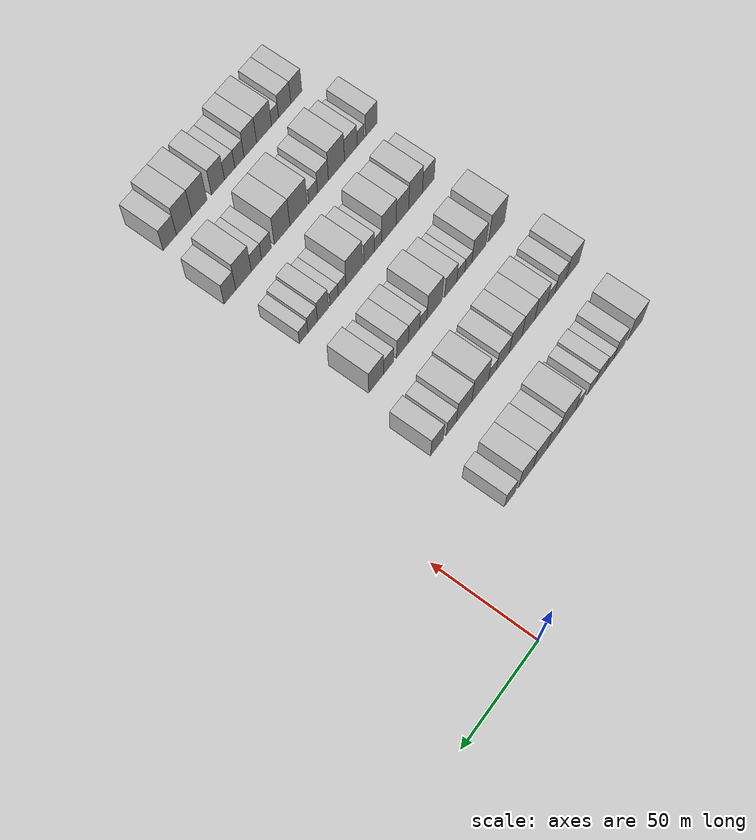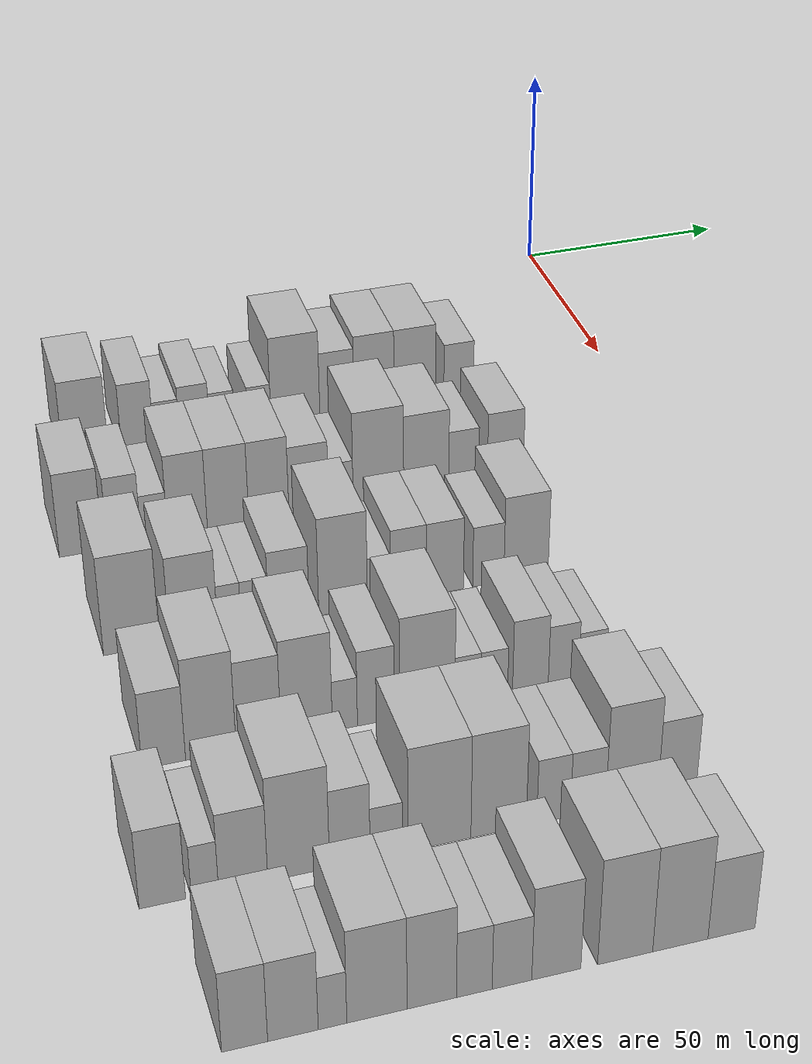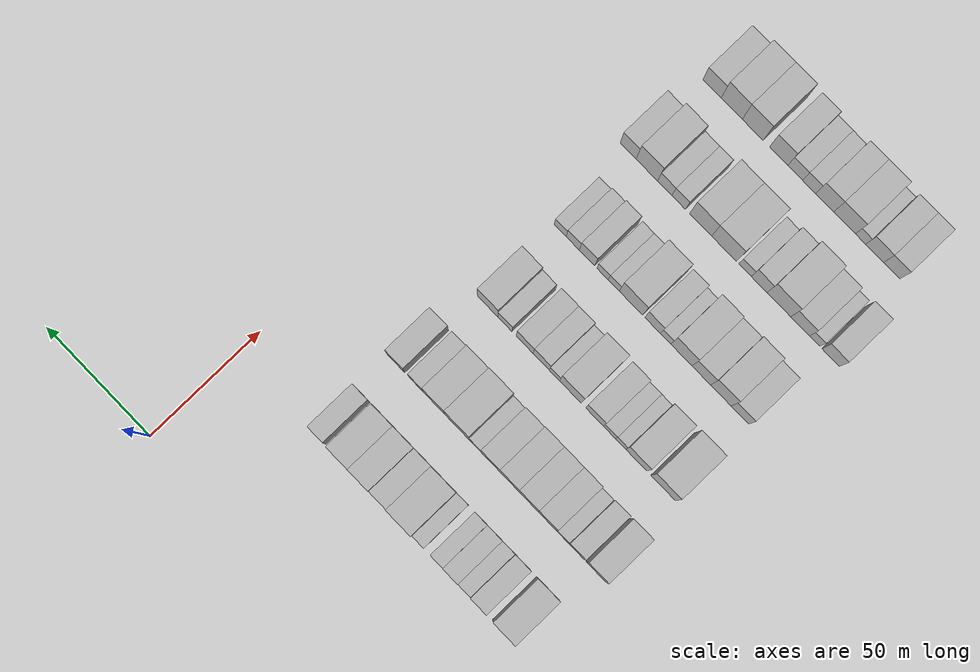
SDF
<sdf version="1.6">
 <world name="default">
  <model name="building_44">
   <static>1</static>
   <pose>50.0000 -126.5563 0 0.000000 0.000000 0.000000</pose>
   <link name="link">
    <pose>0 0 10.50 0 0 0</pose>
    <collision name="collision"><geometry><box><size>20.0000 10.2554 21.0000</size></box></geometry></collision>
    <visual name="visual">
     <cast_shadows>0</cast_shadows>
     <geometry><box><size>20.0000 10.2554 21.0000</size></box></geometry>
     <material>
      <script>
       <uri>model://HANNAS_wall/materials/scripts</uri>
       <uri>model://HANNAS_wall/materials/textures</uri>
       <name>vrc/HANNAS_wall</name>
      </script>
     </material>
    </visual>
   </link>
  </model>
  <model name="building_45">
   <static>1</static>
   <pose>50.0000 -114.7270 0 0.000000 0.000000 0.000000</pose>
   <link name="link">
    <pose>0 0 9.00 0 0 0</pose>
    <collision name="collision"><geometry><box><size>20.0000 7.4034 18.0000</size></box></geometry></collision>
    <visual name="visual">
     <cast_shadows>0</cast_shadows>
     <geometry><box><size>20.0000 7.4034 18.0000</size></box></geometry>
     <material>
      <script>
       <uri>model://HANNAS_wall/materials/scripts</uri>
       <uri>model://HANNAS_wall/materials/textures</uri>
       <name>vrc/HANNAS_wall</name>
      </script>
     </material>
    </visual>
   </link>
  </model>
  <model name="building_46">
   <static>1</static>
   <pose>50.0000 -108.0802 0 0.000000 0.000000 0.000000</pose>
   <link name="link">
    <pose>0 0 6.00 0 0 0</pose>
    <collision name="collision"><geometry><box><size>20.0000 5.8900 12.0000</size></box></geometry></collision>
    <visual name="visual">
     <cast_shadows>0</cast_shadows>
     <geometry><box><size>20.0000 5.8900 12.0000</size></box></geometry>
     <material>
      <script>
       <uri>model://HANNAS_wall/materials/scripts</uri>
       <uri>model://HANNAS_wall/materials/textures</uri>
       <name>vrc/HANNAS_wall</name>
      </script>
     </material>
    </visual>
   </link>
  </model>
  <model name="building_47">
   <static>1</static>
   <pose>50.0000 -101.6325 0 0.000000 0.000000 0.000000</pose>
   <link name="link">
    <pose>0 0 7.50 0 0 0</pose>
    <collision name="collision"><geometry><box><size>20.0000 7.0054 15.0000</size></box></geometry></collision>
    <visual name="visual">
     <cast_shadows>0</cast_shadows>
     <geometry><box><size>20.0000 7.0054 15.0000</size></box></geometry>
     <material>
      <script>
       <uri>model://HANNAS_wall/materials/scripts</uri>
       <uri>model://HANNAS_wall/materials/textures</uri>
       <name>vrc/HANNAS_wall</name>
      </script>
     </material>
    </visual>
   </link>
  </model>
  <model name="building_48">
   <static>1</static>
   <pose>50.0000 -95.1875 0 0.000000 0.000000 0.000000</pose>
   <link name="link">
    <pose>0 0 6.00 0 0 0</pose>
    <collision name="collision"><geometry><box><size>20.0000 5.8846 12.0000</size></box></geometry></collision>
    <visual name="visual">
     <cast_shadows>0</cast_shadows>
     <geometry><box><size>20.0000 5.8846 12.0000</size></box></geometry>
     <material>
      <script>
       <uri>model://HANNAS_wall/materials/scripts</uri>
       <uri>model://HANNAS_wall/materials/textures</uri>
       <name>vrc/HANNAS_wall</name>
      </script>
     </material>
    </visual>
   </link>
  </model>
  <model name="building_49">
   <static>1</static>
   <pose>50.0000 -86.5056 0 0.000000 0.000000 0.000000</pose>
   <link name="link">
    <pose>0 0 6.00 0 0 0</pose>
    <collision name="collision"><geometry><box><size>20.0000 5.4793 12.0000</size></box></geometry></collision>
    <visual name="visual">
     <cast_shadows>0</cast_shadows>
     <geometry><box><size>20.0000 5.4793 12.0000</size></box></geometry>
     <material>
      <script>
       <uri>model://HANNAS_wall/materials/scripts</uri>
       <uri>model://HANNAS_wall/materials/textures</uri>
       <name>vrc/HANNAS_wall</name>
      </script>
     </material>
    </visual>
   </link>
  </model>
  <model name="building_50">
   <static>1</static>
   <pose>50.0000 -77.9951 0 0.000000 0.000000 0.000000</pose>
   <link name="link">
    <pose>0 0 12.00 0 0 0</pose>
    <collision name="collision"><geometry><box><size>20.0000 11.5418 24.0000</size></box></geometry></collision>
    <visual name="visual">
     <cast_shadows>0</cast_shadows>
     <geometry><box><size>20.0000 11.5418 24.0000</size></box></geometry>
     <material>
      <script>
       <uri>model://HANNAS_wall/materials/scripts</uri>
       <uri>model://HANNAS_wall/materials/textures</uri>
       <name>vrc/HANNAS_wall</name>
      </script>
     </material>
    </visual>
   </link>
  </model>
  <model name="building_51">
   <static>1</static>
   <pose>50.0000 -68.1333 0 0.000000 0.000000 0.000000</pose>
   <link name="link">
    <pose>0 0 9.00 0 0 0</pose>
    <collision name="collision"><geometry><box><size>20.0000 8.1817 18.0000</size></box></geometry></collision>
    <visual name="visual">
     <cast_shadows>0</cast_shadows>
     <geometry><box><size>20.0000 8.1817 18.0000</size></box></geometry>
     <material>
      <script>
       <uri>model://HANNAS_wall/materials/scripts</uri>
       <uri>model://HANNAS_wall/materials/textures</uri>
       <name>vrc/HANNAS_wall</name>
      </script>
     </material>
    </visual>
   </link>
  </model>
  <model name="building_52">
   <static>1</static>
   <pose>50.0000 -59.2234 0 0.000000 0.000000 0.000000</pose>
   <link name="link">
    <pose>0 0 10.50 0 0 0</pose>
    <collision name="collision"><geometry><box><size>20.0000 9.6382 21.0000</size></box></geometry></collision>
    <visual name="visual">
     <cast_shadows>0</cast_shadows>
     <geometry><box><size>20.0000 9.6382 21.0000</size></box></geometry>
     <material>
      <script>
       <uri>model://HANNAS_wall/materials/scripts</uri>
       <uri>model://HANNAS_wall/materials/textures</uri>
       <name>vrc/HANNAS_wall</name>
      </script>
     </material>
    </visual>
   </link>
  </model>
  <model name="building_53">
   <static>1</static>
   <pose>50.0000 -49.3553 0 0.000000 0.000000 0.000000</pose>
   <link name="link">
    <pose>0 0 10.50 0 0 0</pose>
    <collision name="collision"><geometry><box><size>20.0000 10.0978 21.0000</size></box></geometry></collision>
    <visual name="visual">
     <cast_shadows>0</cast_shadows>
     <geometry><box><size>20.0000 10.0978 21.0000</size></box></geometry>
     <material>
      <script>
       <uri>model://HANNAS_wall/materials/scripts</uri>
       <uri>model://HANNAS_wall/materials/textures</uri>
       <name>vrc/HANNAS_wall</name>
      </script>
     </material>
    </visual>
   </link>
  </model>
  <model name="building_54">
   <static>1</static>
   <pose>50.0000 -38.6630 0 0.000000 0.000000 0.000000</pose>
   <link name="link">
    <pose>0 0 7.50 0 0 0</pose>
    <collision name="collision"><geometry><box><size>20.0000 7.2869 15.0000</size></box></geometry></collision>
    <visual name="visual">
     <cast_shadows>0</cast_shadows>
     <geometry><box><size>20.0000 7.2869 15.0000</size></box></geometry>
     <material>
      <script>
       <uri>model://HANNAS_wall/materials/scripts</uri>
       <uri>model://HANNAS_wall/materials/textures</uri>
       <name>vrc/HANNAS_wall</name>
      </script>
     </material>
    </visual>
   </link>
  </model>
  <model name="building_170">
   <static>1</static>
   <pose>85.0000 -133.5692 0 0.000000 0.000000 0.000000</pose>
   <link name="link">
    <pose>0 0 10.50 0 0 0</pose>
    <collision name="collision"><geometry><box><size>20.0000 9.2683 21.0000</size></box></geometry></collision>
    <visual name="visual">
     <cast_shadows>0</cast_shadows>
     <geometry><box><size>20.0000 9.2683 21.0000</size></box></geometry>
     <material>
      <script>
       <uri>model://HANNAS_wall/materials/scripts</uri>
       <uri>model://HANNAS_wall/materials/textures</uri>
       <name>vrc/HANNAS_wall</name>
      </script>
     </material>
    </visual>
   </link>
  </model>
  <model name="building_171">
   <static>1</static>
   <pose>85.0000 -124.3135 0 0.000000 0.000000 0.000000</pose>
   <link name="link">
    <pose>0 0 9.00 0 0 0</pose>
    <collision name="collision"><geometry><box><size>20.0000 7.2431 18.0000</size></box></geometry></collision>
    <visual name="visual">
     <cast_shadows>0</cast_shadows>
     <geometry><box><size>20.0000 7.2431 18.0000</size></box></geometry>
     <material>
      <script>
       <uri>model://HANNAS_wall/materials/scripts</uri>
       <uri>model://HANNAS_wall/materials/textures</uri>
       <name>vrc/HANNAS_wall</name>
      </script>
     </material>
    </visual>
   </link>
  </model>
  <model name="building_172">
   <static>1</static>
   <pose>85.0000 -117.8173 0 0.000000 0.000000 0.000000</pose>
   <link name="link">
    <pose>0 0 6.00 0 0 0</pose>
    <collision name="collision"><geometry><box><size>20.0000 5.7494 12.0000</size></box></geometry></collision>
    <visual name="visual">
     <cast_shadows>0</cast_shadows>
     <geometry><box><size>20.0000 5.7494 12.0000</size></box></geometry>
     <material>
      <script>
       <uri>model://HANNAS_wall/materials/scripts</uri>
       <uri>model://HANNAS_wall/materials/textures</uri>
       <name>vrc/HANNAS_wall</name>
      </script>
     </material>
    </visual>
   </link>
  </model>
  <model name="building_173">
   <static>1</static>
   <pose>85.0000 -110.6267 0 0.000000 0.000000 0.000000</pose>
   <link name="link">
    <pose>0 0 10.50 0 0 0</pose>
    <collision name="collision"><geometry><box><size>20.0000 8.6318 21.0000</size></box></geometry></collision>
    <visual name="visual">
     <cast_shadows>0</cast_shadows>
     <geometry><box><size>20.0000 8.6318 21.0000</size></box></geometry>
     <material>
      <script>
       <uri>model://HANNAS_wall/materials/scripts</uri>
       <uri>model://HANNAS_wall/materials/textures</uri>
       <name>vrc/HANNAS_wall</name>
      </script>
     </material>
    </visual>
   </link>
  </model>
  <model name="building_174">
   <static>1</static>
   <pose>85.0000 -101.7493 0 0.000000 0.000000 0.000000</pose>
   <link name="link">
    <pose>0 0 10.50 0 0 0</pose>
    <collision name="collision"><geometry><box><size>20.0000 9.1229 21.0000</size></box></geometry></collision>
    <visual name="visual">
     <cast_shadows>0</cast_shadows>
     <geometry><box><size>20.0000 9.1229 21.0000</size></box></geometry>
     <material>
      <script>
       <uri>model://HANNAS_wall/materials/scripts</uri>
       <uri>model://HANNAS_wall/materials/textures</uri>
       <name>vrc/HANNAS_wall</name>
      </script>
     </material>
    </visual>
   </link>
  </model>
  <model name="building_175">
   <static>1</static>
   <pose>85.0000 -92.7493 0 0.000000 0.000000 0.000000</pose>
   <link name="link">
    <pose>0 0 10.50 0 0 0</pose>
    <collision name="collision"><geometry><box><size>20.0000 8.8771 21.0000</size></box></geometry></collision>
    <visual name="visual">
     <cast_shadows>0</cast_shadows>
     <geometry><box><size>20.0000 8.8771 21.0000</size></box></geometry>
     <material>
      <script>
       <uri>model://HANNAS_wall/materials/scripts</uri>
       <uri>model://HANNAS_wall/materials/textures</uri>
       <name>vrc/HANNAS_wall</name>
      </script>
     </material>
    </visual>
   </link>
  </model>
  <model name="building_176">
   <static>1</static>
   <pose>85.0000 -83.8791 0 0.000000 0.000000 0.000000</pose>
   <link name="link">
    <pose>0 0 9.00 0 0 0</pose>
    <collision name="collision"><geometry><box><size>20.0000 8.8634 18.0000</size></box></geometry></collision>
    <visual name="visual">
     <cast_shadows>0</cast_shadows>
     <geometry><box><size>20.0000 8.8634 18.0000</size></box></geometry>
     <material>
      <script>
       <uri>model://HANNAS_wall/materials/scripts</uri>
       <uri>model://HANNAS_wall/materials/textures</uri>
       <name>vrc/HANNAS_wall</name>
      </script>
     </material>
    </visual>
   </link>
  </model>
  <model name="building_177">
   <static>1</static>
   <pose>85.0000 -76.6823 0 0.000000 0.000000 0.000000</pose>
   <link name="link">
    <pose>0 0 6.00 0 0 0</pose>
    <collision name="collision"><geometry><box><size>20.0000 5.5302 12.0000</size></box></geometry></collision>
    <visual name="visual">
     <cast_shadows>0</cast_shadows>
     <geometry><box><size>20.0000 5.5302 12.0000</size></box></geometry>
     <material>
      <script>
       <uri>model://HANNAS_wall/materials/scripts</uri>
       <uri>model://HANNAS_wall/materials/textures</uri>
       <name>vrc/HANNAS_wall</name>
      </script>
     </material>
    </visual>
   </link>
  </model>
  <model name="building_178">
   <static>1</static>
   <pose>85.0000 -68.1731 0 0.000000 0.000000 0.000000</pose>
   <link name="link">
    <pose>0 0 12.00 0 0 0</pose>
    <collision name="collision"><geometry><box><size>20.0000 11.4882 24.0000</size></box></geometry></collision>
    <visual name="visual">
     <cast_shadows>0</cast_shadows>
     <geometry><box><size>20.0000 11.4882 24.0000</size></box></geometry>
     <material>
      <script>
       <uri>model://HANNAS_wall/materials/scripts</uri>
       <uri>model://HANNAS_wall/materials/textures</uri>
       <name>vrc/HANNAS_wall</name>
      </script>
     </material>
    </visual>
   </link>
  </model>
  <model name="building_179">
   <static>1</static>
   <pose>85.0000 -57.2550 0 0.000000 0.000000 0.000000</pose>
   <link name="link">
    <pose>0 0 10.50 0 0 0</pose>
    <collision name="collision"><geometry><box><size>20.0000 10.3480 21.0000</size></box></geometry></collision>
    <visual name="visual">
     <cast_shadows>0</cast_shadows>
     <geometry><box><size>20.0000 10.3480 21.0000</size></box></geometry>
     <material>
      <script>
       <uri>model://HANNAS_wall/materials/scripts</uri>
       <uri>model://HANNAS_wall/materials/textures</uri>
       <name>vrc/HANNAS_wall</name>
      </script>
     </material>
    </visual>
   </link>
  </model>
  <model name="building_180">
   <static>1</static>
   <pose>85.0000 -48.6281 0 0.000000 0.000000 0.000000</pose>
   <link name="link">
    <pose>0 0 7.50 0 0 0</pose>
    <collision name="collision"><geometry><box><size>20.0000 6.9058 15.0000</size></box></geometry></collision>
    <visual name="visual">
     <cast_shadows>0</cast_shadows>
     <geometry><box><size>20.0000 6.9058 15.0000</size></box></geometry>
     <material>
      <script>
       <uri>model://HANNAS_wall/materials/scripts</uri>
       <uri>model://HANNAS_wall/materials/textures</uri>
       <name>vrc/HANNAS_wall</name>
      </script>
     </material>
    </visual>
   </link>
  </model>
  <model name="building_181">
   <static>1</static>
   <pose>85.0000 -38.9737 0 0.000000 0.000000 0.000000</pose>
   <link name="link">
    <pose>0 0 9.00 0 0 0</pose>
    <collision name="collision"><geometry><box><size>20.0000 8.4031 18.0000</size></box></geometry></collision>
    <visual name="visual">
     <cast_shadows>0</cast_shadows>
     <geometry><box><size>20.0000 8.4031 18.0000</size></box></geometry>
     <material>
      <script>
       <uri>model://HANNAS_wall/materials/scripts</uri>
       <uri>model://HANNAS_wall/materials/textures</uri>
       <name>vrc/HANNAS_wall</name>
      </script>
     </material>
    </visual>
   </link>
  </model>
  <model name="building_297">
   <static>1</static>
   <pose>120.0000 -129.3568 0 0.000000 0.000000 0.000000</pose>
   <link name="link">
    <pose>0 0 12.00 0 0 0</pose>
    <collision name="collision"><geometry><box><size>20.0000 11.3334 24.0000</size></box></geometry></collision>
    <visual name="visual">
     <cast_shadows>0</cast_shadows>
     <geometry><box><size>20.0000 11.3334 24.0000</size></box></geometry>
     <material>
      <script>
       <uri>model://HANNAS_wall/materials/scripts</uri>
       <uri>model://HANNAS_wall/materials/textures</uri>
       <name>vrc/HANNAS_wall</name>
      </script>
     </material>
    </visual>
   </link>
  </model>
  <model name="building_298">
   <static>1</static>
   <pose>120.0000 -116.7527 0 0.000000 0.000000 0.000000</pose>
   <link name="link">
    <pose>0 0 10.50 0 0 0</pose>
    <collision name="collision"><geometry><box><size>20.0000 9.8749 21.0000</size></box></geometry></collision>
    <visual name="visual">
     <cast_shadows>0</cast_shadows>
     <geometry><box><size>20.0000 9.8749 21.0000</size></box></geometry>
     <material>
      <script>
       <uri>model://HANNAS_wall/materials/scripts</uri>
       <uri>model://HANNAS_wall/materials/textures</uri>
       <name>vrc/HANNAS_wall</name>
      </script>
     </material>
    </visual>
   </link>
  </model>
  <model name="building_299">
   <static>1</static>
   <pose>120.0000 -109.3973 0 0.000000 0.000000 0.000000</pose>
   <link name="link">
    <pose>0 0 6.00 0 0 0</pose>
    <collision name="collision"><geometry><box><size>20.0000 4.8359 12.0000</size></box></geometry></collision>
    <visual name="visual">
     <cast_shadows>0</cast_shadows>
     <geometry><box><size>20.0000 4.8359 12.0000</size></box></geometry>
     <material>
      <script>
       <uri>model://HANNAS_wall/materials/scripts</uri>
       <uri>model://HANNAS_wall/materials/textures</uri>
       <name>vrc/HANNAS_wall</name>
      </script>
     </material>
    </visual>
   </link>
  </model>
  <model name="building_300">
   <static>1</static>
   <pose>120.0000 -104.1195 0 0.000000 0.000000 0.000000</pose>
   <link name="link">
    <pose>0 0 6.00 0 0 0</pose>
    <collision name="collision"><geometry><box><size>20.0000 5.7197 12.0000</size></box></geometry></collision>
    <visual name="visual">
     <cast_shadows>0</cast_shadows>
     <geometry><box><size>20.0000 5.7197 12.0000</size></box></geometry>
     <material>
      <script>
       <uri>model://HANNAS_wall/materials/scripts</uri>
       <uri>model://HANNAS_wall/materials/textures</uri>
       <name>vrc/HANNAS_wall</name>
      </script>
     </material>
    </visual>
   </link>
  </model>
  <model name="building_301">
   <static>1</static>
   <pose>120.0000 -97.0399 0 0.000000 0.000000 0.000000</pose>
   <link name="link">
    <pose>0 0 9.00 0 0 0</pose>
    <collision name="collision"><geometry><box><size>20.0000 8.4394 18.0000</size></box></geometry></collision>
    <visual name="visual">
     <cast_shadows>0</cast_shadows>
     <geometry><box><size>20.0000 8.4394 18.0000</size></box></geometry>
     <material>
      <script>
       <uri>model://HANNAS_wall/materials/scripts</uri>
       <uri>model://HANNAS_wall/materials/textures</uri>
       <name>vrc/HANNAS_wall</name>
      </script>
     </material>
    </visual>
   </link>
  </model>
  <model name="building_302">
   <static>1</static>
   <pose>120.0000 -85.6773 0 0.000000 0.000000 0.000000</pose>
   <link name="link">
    <pose>0 0 12.00 0 0 0</pose>
    <collision name="collision"><geometry><box><size>20.0000 10.2858 24.0000</size></box></geometry></collision>
    <visual name="visual">
     <cast_shadows>0</cast_shadows>
     <geometry><box><size>20.0000 10.2858 24.0000</size></box></geometry>
     <material>
      <script>
       <uri>model://HANNAS_wall/materials/scripts</uri>
       <uri>model://HANNAS_wall/materials/textures</uri>
       <name>vrc/HANNAS_wall</name>
      </script>
     </material>
    </visual>
   </link>
  </model>
  <model name="building_303">
   <static>1</static>
   <pose>120.0000 -78.0714 0 0.000000 0.000000 0.000000</pose>
   <link name="link">
    <pose>0 0 6.00 0 0 0</pose>
    <collision name="collision"><geometry><box><size>20.0000 4.9260 12.0000</size></box></geometry></collision>
    <visual name="visual">
     <cast_shadows>0</cast_shadows>
     <geometry><box><size>20.0000 4.9260 12.0000</size></box></geometry>
     <material>
      <script>
       <uri>model://HANNAS_wall/materials/scripts</uri>
       <uri>model://HANNAS_wall/materials/textures</uri>
       <name>vrc/HANNAS_wall</name>
      </script>
     </material>
    </visual>
   </link>
  </model>
  <model name="building_304">
   <static>1</static>
   <pose>120.0000 -71.7661 0 0.000000 0.000000 0.000000</pose>
   <link name="link">
    <pose>0 0 9.00 0 0 0</pose>
    <collision name="collision"><geometry><box><size>20.0000 7.6847 18.0000</size></box></geometry></collision>
    <visual name="visual">
     <cast_shadows>0</cast_shadows>
     <geometry><box><size>20.0000 7.6847 18.0000</size></box></geometry>
     <material>
      <script>
       <uri>model://HANNAS_wall/materials/scripts</uri>
       <uri>model://HANNAS_wall/materials/textures</uri>
       <name>vrc/HANNAS_wall</name>
      </script>
     </material>
    </visual>
   </link>
  </model>
  <model name="building_305">
   <static>1</static>
   <pose>120.0000 -63.9236 0 0.000000 0.000000 0.000000</pose>
   <link name="link">
    <pose>0 0 9.00 0 0 0</pose>
    <collision name="collision"><geometry><box><size>20.0000 8.0004 18.0000</size></box></geometry></collision>
    <visual name="visual">
     <cast_shadows>0</cast_shadows>
     <geometry><box><size>20.0000 8.0004 18.0000</size></box></geometry>
     <material>
      <script>
       <uri>model://HANNAS_wall/materials/scripts</uri>
       <uri>model://HANNAS_wall/materials/textures</uri>
       <name>vrc/HANNAS_wall</name>
      </script>
     </material>
    </visual>
   </link>
  </model>
  <model name="building_306">
   <static>1</static>
   <pose>120.0000 -54.5290 0 0.000000 0.000000 0.000000</pose>
   <link name="link">
    <pose>0 0 7.50 0 0 0</pose>
    <collision name="collision"><geometry><box><size>20.0000 6.7887 15.0000</size></box></geometry></collision>
    <visual name="visual">
     <cast_shadows>0</cast_shadows>
     <geometry><box><size>20.0000 6.7887 15.0000</size></box></geometry>
     <material>
      <script>
       <uri>model://HANNAS_wall/materials/scripts</uri>
       <uri>model://HANNAS_wall/materials/textures</uri>
       <name>vrc/HANNAS_wall</name>
      </script>
     </material>
    </visual>
   </link>
  </model>
  <model name="building_307">
   <static>1</static>
   <pose>120.0000 -46.2588 0 0.000000 0.000000 0.000000</pose>
   <link name="link">
    <pose>0 0 10.50 0 0 0</pose>
    <collision name="collision"><geometry><box><size>20.0000 9.7516 21.0000</size></box></geometry></collision>
    <visual name="visual">
     <cast_shadows>0</cast_shadows>
     <geometry><box><size>20.0000 9.7516 21.0000</size></box></geometry>
     <material>
      <script>
       <uri>model://HANNAS_wall/materials/scripts</uri>
       <uri>model://HANNAS_wall/materials/textures</uri>
       <name>vrc/HANNAS_wall</name>
      </script>
     </material>
    </visual>
   </link>
  </model>
  <model name="building_424">
   <static>1</static>
   <pose>155.0000 -129.8692 0 0.000000 0.000000 0.000000</pose>
   <link name="link">
    <pose>0 0 9.00 0 0 0</pose>
    <collision name="collision"><geometry><box><size>20.0000 8.2679 18.0000</size></box></geometry></collision>
    <visual name="visual">
     <cast_shadows>0</cast_shadows>
     <geometry><box><size>20.0000 8.2679 18.0000</size></box></geometry>
     <material>
      <script>
       <uri>model://HANNAS_wall/materials/scripts</uri>
       <uri>model://HANNAS_wall/materials/textures</uri>
       <name>vrc/HANNAS_wall</name>
      </script>
     </material>
    </visual>
   </link>
  </model>
  <model name="building_425">
   <static>1</static>
   <pose>155.0000 -120.8916 0 0.000000 0.000000 0.000000</pose>
   <link name="link">
    <pose>0 0 12.00 0 0 0</pose>
    <collision name="collision"><geometry><box><size>20.0000 9.6871 24.0000</size></box></geometry></collision>
    <visual name="visual">
     <cast_shadows>0</cast_shadows>
     <geometry><box><size>20.0000 9.6871 24.0000</size></box></geometry>
     <material>
      <script>
       <uri>model://HANNAS_wall/materials/scripts</uri>
       <uri>model://HANNAS_wall/materials/textures</uri>
       <name>vrc/HANNAS_wall</name>
      </script>
     </material>
    </visual>
   </link>
  </model>
  <model name="building_426">
   <static>1</static>
   <pose>155.0000 -111.6832 0 0.000000 0.000000 0.000000</pose>
   <link name="link">
    <pose>0 0 10.50 0 0 0</pose>
    <collision name="collision"><geometry><box><size>20.0000 8.7297 21.0000</size></box></geometry></collision>
    <visual name="visual">
     <cast_shadows>0</cast_shadows>
     <geometry><box><size>20.0000 8.7297 21.0000</size></box></geometry>
     <material>
      <script>
       <uri>model://HANNAS_wall/materials/scripts</uri>
       <uri>model://HANNAS_wall/materials/textures</uri>
       <name>vrc/HANNAS_wall</name>
      </script>
     </material>
    </visual>
   </link>
  </model>
  <model name="building_427">
   <static>1</static>
   <pose>155.0000 -102.3189 0 0.000000 0.000000 0.000000</pose>
   <link name="link">
    <pose>0 0 12.00 0 0 0</pose>
    <collision name="collision"><geometry><box><size>20.0000 9.9988 24.0000</size></box></geometry></collision>
    <visual name="visual">
     <cast_shadows>0</cast_shadows>
     <geometry><box><size>20.0000 9.9988 24.0000</size></box></geometry>
     <material>
      <script>
       <uri>model://HANNAS_wall/materials/scripts</uri>
       <uri>model://HANNAS_wall/materials/textures</uri>
       <name>vrc/HANNAS_wall</name>
      </script>
     </material>
    </visual>
   </link>
  </model>
  <model name="building_428">
   <static>1</static>
   <pose>155.0000 -94.8464 0 0.000000 0.000000 0.000000</pose>
   <link name="link">
    <pose>0 0 6.00 0 0 0</pose>
    <collision name="collision"><geometry><box><size>20.0000 4.9463 12.0000</size></box></geometry></collision>
    <visual name="visual">
     <cast_shadows>0</cast_shadows>
     <geometry><box><size>20.0000 4.9463 12.0000</size></box></geometry>
     <material>
      <script>
       <uri>model://HANNAS_wall/materials/scripts</uri>
       <uri>model://HANNAS_wall/materials/textures</uri>
       <name>vrc/HANNAS_wall</name>
      </script>
     </material>
    </visual>
   </link>
  </model>
  <model name="building_429">
   <static>1</static>
   <pose>155.0000 -88.6822 0 0.000000 0.000000 0.000000</pose>
   <link name="link">
    <pose>0 0 9.00 0 0 0</pose>
    <collision name="collision"><geometry><box><size>20.0000 7.3821 18.0000</size></box></geometry></collision>
    <visual name="visual">
     <cast_shadows>0</cast_shadows>
     <geometry><box><size>20.0000 7.3821 18.0000</size></box></geometry>
     <material>
      <script>
       <uri>model://HANNAS_wall/materials/scripts</uri>
       <uri>model://HANNAS_wall/materials/textures</uri>
       <name>vrc/HANNAS_wall</name>
      </script>
     </material>
    </visual>
   </link>
  </model>
  <model name="building_430">
   <static>1</static>
   <pose>155.0000 -78.4416 0 0.000000 0.000000 0.000000</pose>
   <link name="link">
    <pose>0 0 12.00 0 0 0</pose>
    <collision name="collision"><geometry><box><size>20.0000 11.0991 24.0000</size></box></geometry></collision>
    <visual name="visual">
     <cast_shadows>0</cast_shadows>
     <geometry><box><size>20.0000 11.0991 24.0000</size></box></geometry>
     <material>
      <script>
       <uri>model://HANNAS_wall/materials/scripts</uri>
       <uri>model://HANNAS_wall/materials/textures</uri>
       <name>vrc/HANNAS_wall</name>
      </script>
     </material>
    </visual>
   </link>
  </model>
  <model name="building_431">
   <static>1</static>
   <pose>155.0000 -70.2488 0 0.000000 0.000000 0.000000</pose>
   <link name="link">
    <pose>0 0 6.00 0 0 0</pose>
    <collision name="collision"><geometry><box><size>20.0000 5.2864 12.0000</size></box></geometry></collision>
    <visual name="visual">
     <cast_shadows>0</cast_shadows>
     <geometry><box><size>20.0000 5.2864 12.0000</size></box></geometry>
     <material>
      <script>
       <uri>model://HANNAS_wall/materials/scripts</uri>
       <uri>model://HANNAS_wall/materials/textures</uri>
       <name>vrc/HANNAS_wall</name>
      </script>
     </material>
    </visual>
   </link>
  </model>
  <model name="building_432">
   <static>1</static>
   <pose>155.0000 -64.8906 0 0.000000 0.000000 0.000000</pose>
   <link name="link">
    <pose>0 0 6.00 0 0 0</pose>
    <collision name="collision"><geometry><box><size>20.0000 5.4301 12.0000</size></box></geometry></collision>
    <visual name="visual">
     <cast_shadows>0</cast_shadows>
     <geometry><box><size>20.0000 5.4301 12.0000</size></box></geometry>
     <material>
      <script>
       <uri>model://HANNAS_wall/materials/scripts</uri>
       <uri>model://HANNAS_wall/materials/textures</uri>
       <name>vrc/HANNAS_wall</name>
      </script>
     </material>
    </visual>
   </link>
  </model>
  <model name="building_433">
   <static>1</static>
   <pose>155.0000 -57.5028 0 0.000000 0.000000 0.000000</pose>
   <link name="link">
    <pose>0 0 9.00 0 0 0</pose>
    <collision name="collision"><geometry><box><size>20.0000 7.3456 18.0000</size></box></geometry></collision>
    <visual name="visual">
     <cast_shadows>0</cast_shadows>
     <geometry><box><size>20.0000 7.3456 18.0000</size></box></geometry>
     <material>
      <script>
       <uri>model://HANNAS_wall/materials/scripts</uri>
       <uri>model://HANNAS_wall/materials/textures</uri>
       <name>vrc/HANNAS_wall</name>
      </script>
     </material>
    </visual>
   </link>
  </model>
  <model name="building_434">
   <static>1</static>
   <pose>155.0000 -50.6951 0 0.000000 0.000000 0.000000</pose>
   <link name="link">
    <pose>0 0 7.50 0 0 0</pose>
    <collision name="collision"><geometry><box><size>20.0000 6.2697 15.0000</size></box></geometry></collision>
    <visual name="visual">
     <cast_shadows>0</cast_shadows>
     <geometry><box><size>20.0000 6.2697 15.0000</size></box></geometry>
     <material>
      <script>
       <uri>model://HANNAS_wall/materials/scripts</uri>
       <uri>model://HANNAS_wall/materials/textures</uri>
       <name>vrc/HANNAS_wall</name>
      </script>
     </material>
    </visual>
   </link>
  </model>
  <model name="building_435">
   <static>1</static>
   <pose>155.0000 -44.6826 0 0.000000 0.000000 0.000000</pose>
   <link name="link">
    <pose>0 0 6.00 0 0 0</pose>
    <collision name="collision"><geometry><box><size>20.0000 5.7552 12.0000</size></box></geometry></collision>
    <visual name="visual">
     <cast_shadows>0</cast_shadows>
     <geometry><box><size>20.0000 5.7552 12.0000</size></box></geometry>
     <material>
      <script>
       <uri>model://HANNAS_wall/materials/scripts</uri>
       <uri>model://HANNAS_wall/materials/textures</uri>
       <name>vrc/HANNAS_wall</name>
      </script>
     </material>
    </visual>
   </link>
  </model>
  <model name="building_552">
   <static>1</static>
   <pose>190.0000 -137.1583 0 0.000000 0.000000 0.000000</pose>
   <link name="link">
    <pose>0 0 9.00 0 0 0</pose>
    <collision name="collision"><geometry><box><size>20.0000 8.1956 18.0000</size></box></geometry></collision>
    <visual name="visual">
     <cast_shadows>0</cast_shadows>
     <geometry><box><size>20.0000 8.1956 18.0000</size></box></geometry>
     <material>
      <script>
       <uri>model://HANNAS_wall/materials/scripts</uri>
       <uri>model://HANNAS_wall/materials/textures</uri>
       <name>vrc/HANNAS_wall</name>
      </script>
     </material>
    </visual>
   </link>
  </model>
  <model name="building_553">
   <static>1</static>
   <pose>190.0000 -129.6292 0 0.000000 0.000000 0.000000</pose>
   <link name="link">
    <pose>0 0 6.00 0 0 0</pose>
    <collision name="collision"><geometry><box><size>20.0000 4.8626 12.0000</size></box></geometry></collision>
    <visual name="visual">
     <cast_shadows>0</cast_shadows>
     <geometry><box><size>20.0000 4.8626 12.0000</size></box></geometry>
     <material>
      <script>
       <uri>model://HANNAS_wall/materials/scripts</uri>
       <uri>model://HANNAS_wall/materials/textures</uri>
       <name>vrc/HANNAS_wall</name>
      </script>
     </material>
    </visual>
   </link>
  </model>
  <model name="building_554">
   <static>1</static>
   <pose>190.0000 -122.7865 0 0.000000 0.000000 0.000000</pose>
   <link name="link">
    <pose>0 0 9.00 0 0 0</pose>
    <collision name="collision"><geometry><box><size>20.0000 8.8227 18.0000</size></box></geometry></collision>
    <visual name="visual">
     <cast_shadows>0</cast_shadows>
     <geometry><box><size>20.0000 8.8227 18.0000</size></box></geometry>
     <material>
      <script>
       <uri>model://HANNAS_wall/materials/scripts</uri>
       <uri>model://HANNAS_wall/materials/textures</uri>
       <name>vrc/HANNAS_wall</name>
      </script>
     </material>
    </visual>
   </link>
  </model>
  <model name="building_555">
   <static>1</static>
   <pose>190.0000 -112.7814 0 0.000000 0.000000 0.000000</pose>
   <link name="link">
    <pose>0 0 12.00 0 0 0</pose>
    <collision name="collision"><geometry><box><size>20.0000 11.1876 24.0000</size></box></geometry></collision>
    <visual name="visual">
     <cast_shadows>0</cast_shadows>
     <geometry><box><size>20.0000 11.1876 24.0000</size></box></geometry>
     <material>
      <script>
       <uri>model://HANNAS_wall/materials/scripts</uri>
       <uri>model://HANNAS_wall/materials/textures</uri>
       <name>vrc/HANNAS_wall</name>
      </script>
     </material>
    </visual>
   </link>
  </model>
  <model name="building_556">
   <static>1</static>
   <pose>190.0000 -103.4660 0 0.000000 0.000000 0.000000</pose>
   <link name="link">
    <pose>0 0 9.00 0 0 0</pose>
    <collision name="collision"><geometry><box><size>20.0000 7.4431 18.0000</size></box></geometry></collision>
    <visual name="visual">
     <cast_shadows>0</cast_shadows>
     <geometry><box><size>20.0000 7.4431 18.0000</size></box></geometry>
     <material>
      <script>
       <uri>model://HANNAS_wall/materials/scripts</uri>
       <uri>model://HANNAS_wall/materials/textures</uri>
       <name>vrc/HANNAS_wall</name>
      </script>
     </material>
    </visual>
   </link>
  </model>
  <model name="building_557">
   <static>1</static>
   <pose>190.0000 -96.7540 0 0.000000 0.000000 0.000000</pose>
   <link name="link">
    <pose>0 0 6.00 0 0 0</pose>
    <collision name="collision"><geometry><box><size>20.0000 5.9808 12.0000</size></box></geometry></collision>
    <visual name="visual">
     <cast_shadows>0</cast_shadows>
     <geometry><box><size>20.0000 5.9808 12.0000</size></box></geometry>
     <material>
      <script>
       <uri>model://HANNAS_wall/materials/scripts</uri>
       <uri>model://HANNAS_wall/materials/textures</uri>
       <name>vrc/HANNAS_wall</name>
      </script>
     </material>
    </visual>
   </link>
  </model>
  <model name="building_558">
   <static>1</static>
   <pose>190.0000 -86.8720 0 0.000000 0.000000 0.000000</pose>
   <link name="link">
    <pose>0 0 12.00 0 0 0</pose>
    <collision name="collision"><geometry><box><size>20.0000 11.7832 24.0000</size></box></geometry></collision>
    <visual name="visual">
     <cast_shadows>0</cast_shadows>
     <geometry><box><size>20.0000 11.7832 24.0000</size></box></geometry>
     <material>
      <script>
       <uri>model://HANNAS_wall/materials/scripts</uri>
       <uri>model://HANNAS_wall/materials/textures</uri>
       <name>vrc/HANNAS_wall</name>
      </script>
     </material>
    </visual>
   </link>
  </model>
  <model name="building_559">
   <static>1</static>
   <pose>190.0000 -75.7359 0 0.000000 0.000000 0.000000</pose>
   <link name="link">
    <pose>0 0 12.00 0 0 0</pose>
    <collision name="collision"><geometry><box><size>20.0000 10.4892 24.0000</size></box></geometry></collision>
    <visual name="visual">
     <cast_shadows>0</cast_shadows>
     <geometry><box><size>20.0000 10.4892 24.0000</size></box></geometry>
     <material>
      <script>
       <uri>model://HANNAS_wall/materials/scripts</uri>
       <uri>model://HANNAS_wall/materials/textures</uri>
       <name>vrc/HANNAS_wall</name>
      </script>
     </material>
    </visual>
   </link>
  </model>
  <model name="building_560">
   <static>1</static>
   <pose>190.0000 -65.2733 0 0.000000 0.000000 0.000000</pose>
   <link name="link">
    <pose>0 0 7.50 0 0 0</pose>
    <collision name="collision"><geometry><box><size>20.0000 6.4359 15.0000</size></box></geometry></collision>
    <visual name="visual">
     <cast_shadows>0</cast_shadows>
     <geometry><box><size>20.0000 6.4359 15.0000</size></box></geometry>
     <material>
      <script>
       <uri>model://HANNAS_wall/materials/scripts</uri>
       <uri>model://HANNAS_wall/materials/textures</uri>
       <name>vrc/HANNAS_wall</name>
      </script>
     </material>
    </visual>
   </link>
  </model>
  <model name="building_561">
   <static>1</static>
   <pose>190.0000 -58.6483 0 0.000000 0.000000 0.000000</pose>
   <link name="link">
    <pose>0 0 7.50 0 0 0</pose>
    <collision name="collision"><geometry><box><size>20.0000 6.8141 15.0000</size></box></geometry></collision>
    <visual name="visual">
     <cast_shadows>0</cast_shadows>
     <geometry><box><size>20.0000 6.8141 15.0000</size></box></geometry>
     <material>
      <script>
       <uri>model://HANNAS_wall/materials/scripts</uri>
       <uri>model://HANNAS_wall/materials/textures</uri>
       <name>vrc/HANNAS_wall</name>
      </script>
     </material>
    </visual>
   </link>
  </model>
  <model name="building_562">
   <static>1</static>
   <pose>190.0000 -50.1302 0 0.000000 0.000000 0.000000</pose>
   <link name="link">
    <pose>0 0 12.00 0 0 0</pose>
    <collision name="collision"><geometry><box><size>20.0000 10.2222 24.0000</size></box></geometry></collision>
    <visual name="visual">
     <cast_shadows>0</cast_shadows>
     <geometry><box><size>20.0000 10.2222 24.0000</size></box></geometry>
     <material>
      <script>
       <uri>model://HANNAS_wall/materials/scripts</uri>
       <uri>model://HANNAS_wall/materials/textures</uri>
       <name>vrc/HANNAS_wall</name>
      </script>
     </material>
    </visual>
   </link>
  </model>
  <model name="building_563">
   <static>1</static>
   <pose>190.0000 -41.1945 0 0.000000 0.000000 0.000000</pose>
   <link name="link">
    <pose>0 0 9.00 0 0 0</pose>
    <collision name="collision"><geometry><box><size>20.0000 7.6493 18.0000</size></box></geometry></collision>
    <visual name="visual">
     <cast_shadows>0</cast_shadows>
     <geometry><box><size>20.0000 7.6493 18.0000</size></box></geometry>
     <material>
      <script>
       <uri>model://HANNAS_wall/materials/scripts</uri>
       <uri>model://HANNAS_wall/materials/textures</uri>
       <name>vrc/HANNAS_wall</name>
      </script>
     </material>
    </visual>
   </link>
  </model>
  <model name="building_677">
   <static>1</static>
   <pose>225.0000 -130.6836 0 0.000000 0.000000 0.000000</pose>
   <link name="link">
    <pose>0 0 9.00 0 0 0</pose>
    <collision name="collision"><geometry><box><size>20.0000 7.6322 18.0000</size></box></geometry></collision>
    <visual name="visual">
     <cast_shadows>0</cast_shadows>
     <geometry><box><size>20.0000 7.6322 18.0000</size></box></geometry>
     <material>
      <script>
       <uri>model://HANNAS_wall/materials/scripts</uri>
       <uri>model://HANNAS_wall/materials/textures</uri>
       <name>vrc/HANNAS_wall</name>
      </script>
     </material>
    </visual>
   </link>
  </model>
  <model name="building_678">
   <static>1</static>
   <pose>225.0000 -122.6445 0 0.000000 0.000000 0.000000</pose>
   <link name="link">
    <pose>0 0 9.00 0 0 0</pose>
    <collision name="collision"><geometry><box><size>20.0000 8.4460 18.0000</size></box></geometry></collision>
    <visual name="visual">
     <cast_shadows>0</cast_shadows>
     <geometry><box><size>20.0000 8.4460 18.0000</size></box></geometry>
     <material>
      <script>
       <uri>model://HANNAS_wall/materials/scripts</uri>
       <uri>model://HANNAS_wall/materials/textures</uri>
       <name>vrc/HANNAS_wall</name>
      </script>
     </material>
    </visual>
   </link>
  </model>
  <model name="building_679">
   <static>1</static>
   <pose>225.0000 -116.0072 0 0.000000 0.000000 0.000000</pose>
   <link name="link">
    <pose>0 0 6.00 0 0 0</pose>
    <collision name="collision"><geometry><box><size>20.0000 4.8285 12.0000</size></box></geometry></collision>
    <visual name="visual">
     <cast_shadows>0</cast_shadows>
     <geometry><box><size>20.0000 4.8285 12.0000</size></box></geometry>
     <material>
      <script>
       <uri>model://HANNAS_wall/materials/scripts</uri>
       <uri>model://HANNAS_wall/materials/textures</uri>
       <name>vrc/HANNAS_wall</name>
      </script>
     </material>
    </visual>
   </link>
  </model>
  <model name="building_680">
   <static>1</static>
   <pose>225.0000 -108.4736 0 0.000000 0.000000 0.000000</pose>
   <link name="link">
    <pose>0 0 10.50 0 0 0</pose>
    <collision name="collision"><geometry><box><size>20.0000 10.2388 21.0000</size></box></geometry></collision>
    <visual name="visual">
     <cast_shadows>0</cast_shadows>
     <geometry><box><size>20.0000 10.2388 21.0000</size></box></geometry>
     <material>
      <script>
       <uri>model://HANNAS_wall/materials/scripts</uri>
       <uri>model://HANNAS_wall/materials/textures</uri>
       <name>vrc/HANNAS_wall</name>
      </script>
     </material>
    </visual>
   </link>
  </model>
  <model name="building_681">
   <static>1</static>
   <pose>225.0000 -99.0886 0 0.000000 0.000000 0.000000</pose>
   <link name="link">
    <pose>0 0 10.50 0 0 0</pose>
    <collision name="collision"><geometry><box><size>20.0000 8.5311 21.0000</size></box></geometry></collision>
    <visual name="visual">
     <cast_shadows>0</cast_shadows>
     <geometry><box><size>20.0000 8.5311 21.0000</size></box></geometry>
     <material>
      <script>
       <uri>model://HANNAS_wall/materials/scripts</uri>
       <uri>model://HANNAS_wall/materials/textures</uri>
       <name>vrc/HANNAS_wall</name>
      </script>
     </material>
    </visual>
   </link>
  </model>
  <model name="building_682">
   <static>1</static>
   <pose>225.0000 -91.7185 0 0.000000 0.000000 0.000000</pose>
   <link name="link">
    <pose>0 0 7.50 0 0 0</pose>
    <collision name="collision"><geometry><box><size>20.0000 6.2090 15.0000</size></box></geometry></collision>
    <visual name="visual">
     <cast_shadows>0</cast_shadows>
     <geometry><box><size>20.0000 6.2090 15.0000</size></box></geometry>
     <material>
      <script>
       <uri>model://HANNAS_wall/materials/scripts</uri>
       <uri>model://HANNAS_wall/materials/textures</uri>
       <name>vrc/HANNAS_wall</name>
      </script>
     </material>
    </visual>
   </link>
  </model>
  <model name="building_683">
   <static>1</static>
   <pose>225.0000 -85.1324 0 0.000000 0.000000 0.000000</pose>
   <link name="link">
    <pose>0 0 7.50 0 0 0</pose>
    <collision name="collision"><geometry><box><size>20.0000 6.9632 15.0000</size></box></geometry></collision>
    <visual name="visual">
     <cast_shadows>0</cast_shadows>
     <geometry><box><size>20.0000 6.9632 15.0000</size></box></geometry>
     <material>
      <script>
       <uri>model://HANNAS_wall/materials/scripts</uri>
       <uri>model://HANNAS_wall/materials/textures</uri>
       <name>vrc/HANNAS_wall</name>
      </script>
     </material>
    </visual>
   </link>
  </model>
  <model name="building_684">
   <static>1</static>
   <pose>225.0000 -77.2956 0 0.000000 0.000000 0.000000</pose>
   <link name="link">
    <pose>0 0 10.50 0 0 0</pose>
    <collision name="collision"><geometry><box><size>20.0000 8.7106 21.0000</size></box></geometry></collision>
    <visual name="visual">
     <cast_shadows>0</cast_shadows>
     <geometry><box><size>20.0000 8.7106 21.0000</size></box></geometry>
     <material>
      <script>
       <uri>model://HANNAS_wall/materials/scripts</uri>
       <uri>model://HANNAS_wall/materials/textures</uri>
       <name>vrc/HANNAS_wall</name>
      </script>
     </material>
    </visual>
   </link>
  </model>
  <model name="building_685">
   <static>1</static>
   <pose>225.0000 -64.9728 0 0.000000 0.000000 0.000000</pose>
   <link name="link">
    <pose>0 0 12.00 0 0 0</pose>
    <collision name="collision"><geometry><box><size>20.0000 9.9350 24.0000</size></box></geometry></collision>
    <visual name="visual">
     <cast_shadows>0</cast_shadows>
     <geometry><box><size>20.0000 9.9350 24.0000</size></box></geometry>
     <material>
      <script>
       <uri>model://HANNAS_wall/materials/scripts</uri>
       <uri>model://HANNAS_wall/materials/textures</uri>
       <name>vrc/HANNAS_wall</name>
      </script>
     </material>
    </visual>
   </link>
  </model>
  <model name="building_686">
   <static>1</static>
   <pose>225.0000 -54.9547 0 0.000000 0.000000 0.000000</pose>
   <link name="link">
    <pose>0 0 12.00 0 0 0</pose>
    <collision name="collision"><geometry><box><size>20.0000 10.1010 24.0000</size></box></geometry></collision>
    <visual name="visual">
     <cast_shadows>0</cast_shadows>
     <geometry><box><size>20.0000 10.1010 24.0000</size></box></geometry>
     <material>
      <script>
       <uri>model://HANNAS_wall/materials/scripts</uri>
       <uri>model://HANNAS_wall/materials/textures</uri>
       <name>vrc/HANNAS_wall</name>
      </script>
     </material>
    </visual>
   </link>
  </model>
  <model name="building_687">
   <static>1</static>
   <pose>225.0000 -45.5546 0 0.000000 0.000000 0.000000</pose>
   <link name="link">
    <pose>0 0 9.00 0 0 0</pose>
    <collision name="collision"><geometry><box><size>20.0000 8.6992 18.0000</size></box></geometry></collision>
    <visual name="visual">
     <cast_shadows>0</cast_shadows>
     <geometry><box><size>20.0000 8.6992 18.0000</size></box></geometry>
     <material>
      <script>
       <uri>model://HANNAS_wall/materials/scripts</uri>
       <uri>model://HANNAS_wall/materials/textures</uri>
       <name>vrc/HANNAS_wall</name>
      </script>
     </material>
    </visual>
   </link>
  </model>
 </world>
</sdf>
